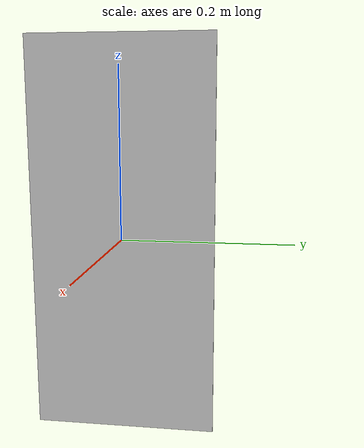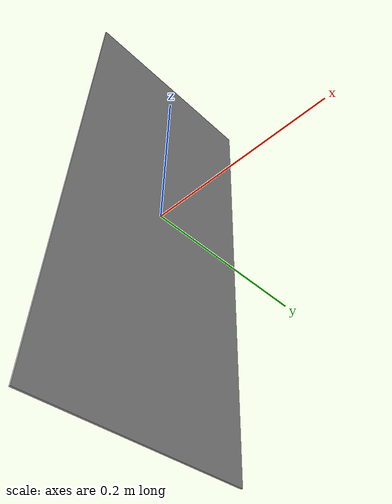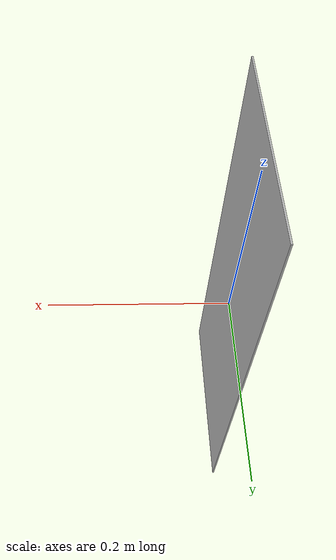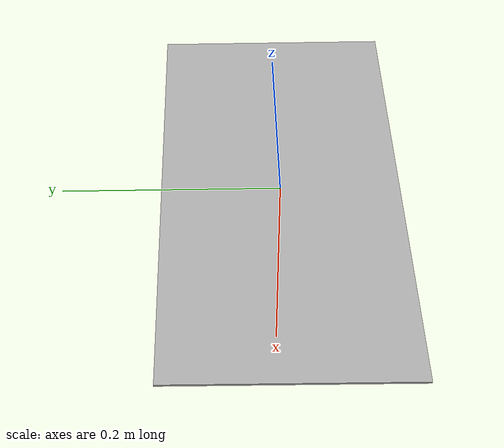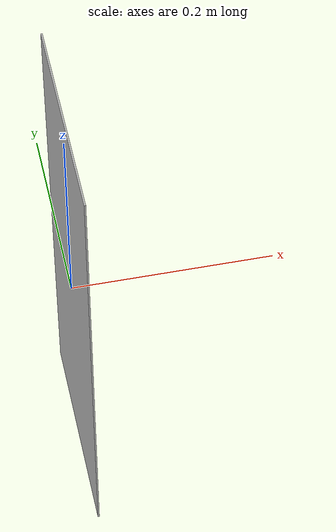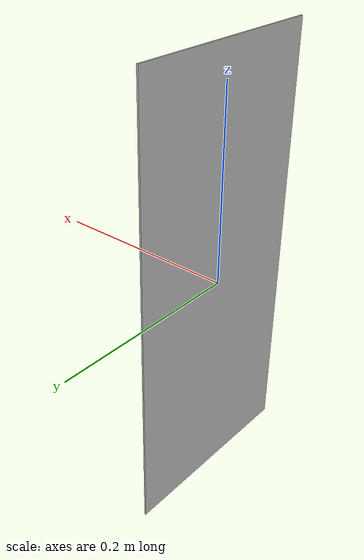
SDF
<?xml version="1.0" ?>
<sdf version="1.5">
  <model name="Dog1">
    <static>true</static>
    <link name="link">
      <pose>0 0 0 0 0 0</pose>
      <collision name="collision">
        <geometry>
          <box>
            <size>.00169 0.2184 .4689</size>
          </box>
        </geometry>
      </collision>
      <visual name="visual">
        <cast_shadows>false</cast_shadows>
        <geometry>
          <box>
            <size>.00169 0.2184 .4689</size>
          </box>
        </geometry>
        <material>
          <script>
            <uri>model://Dog1/materials/scripts</uri>
            <uri>model://Dog1/materials/textures</uri>
            <name>vrc/Dog1</name>
          </script>
        </material>
      </visual>
    </link>
  </model>
</sdf>
